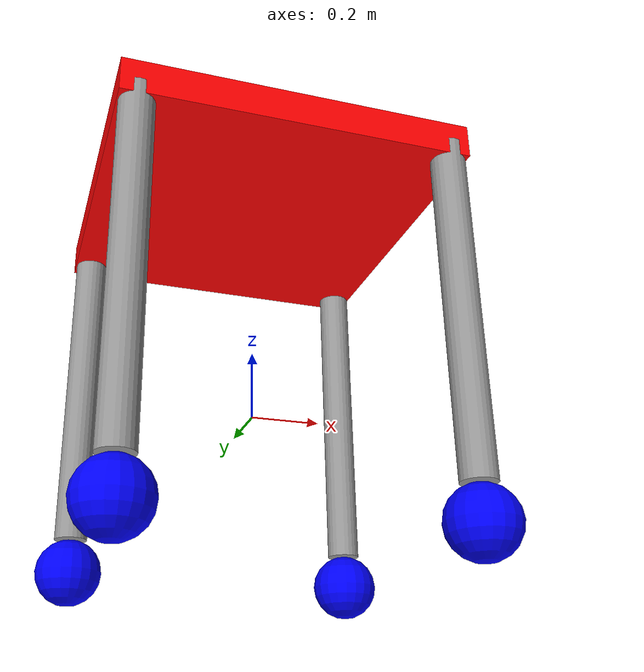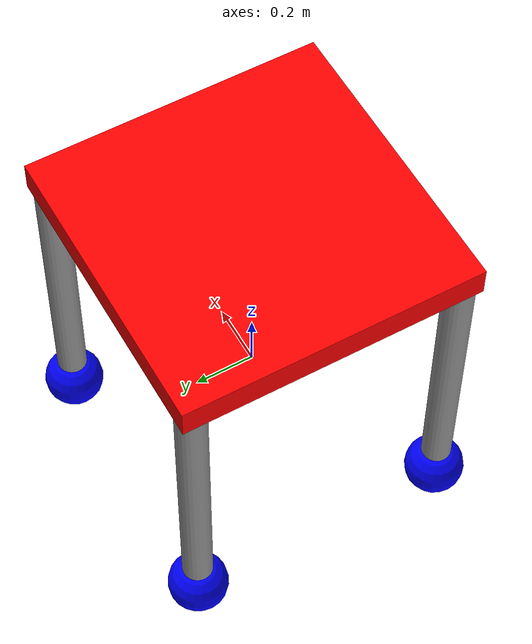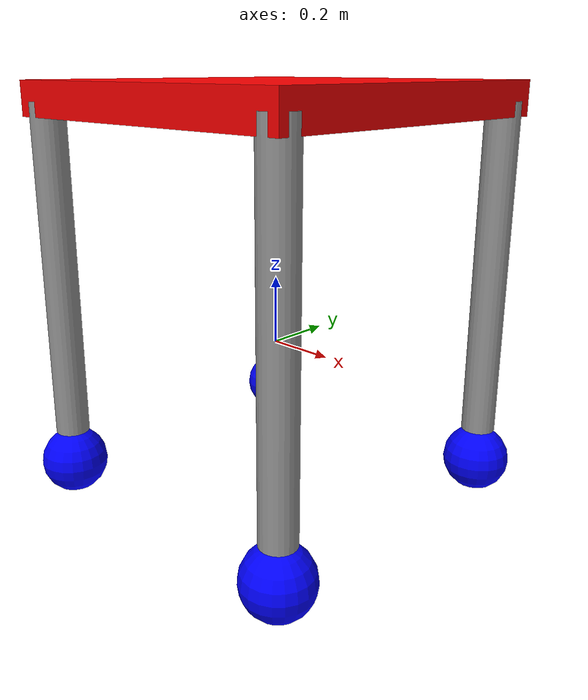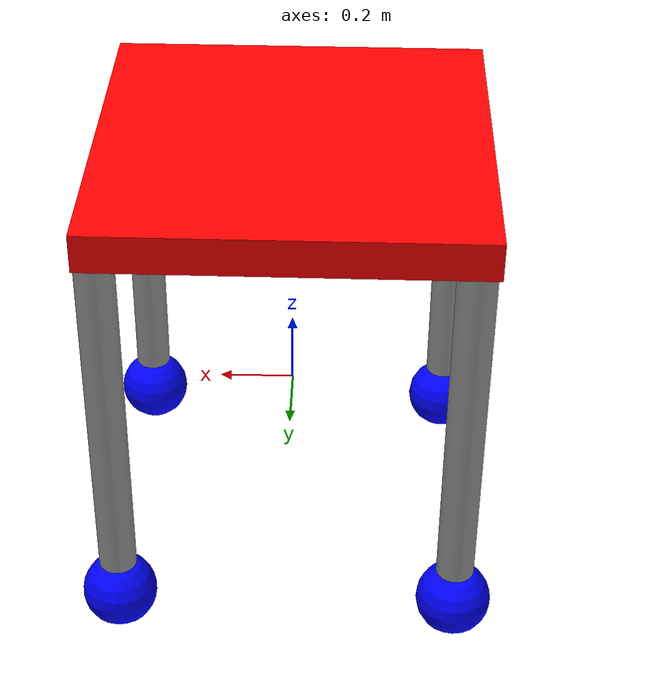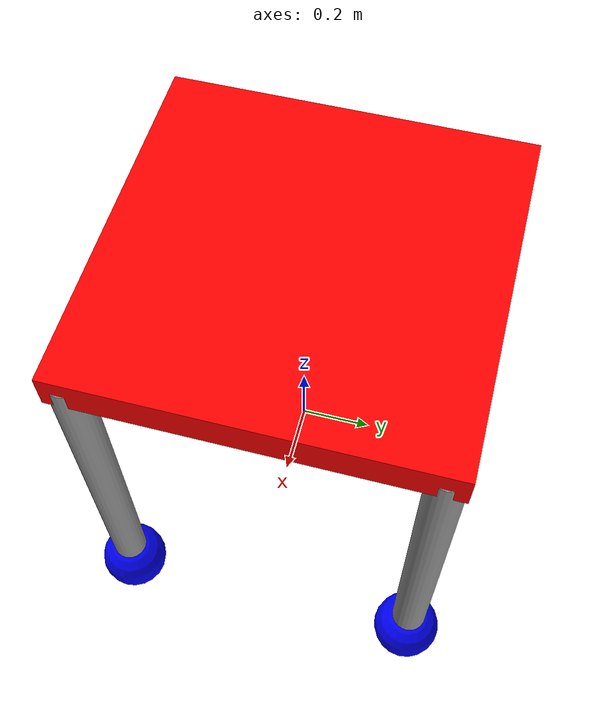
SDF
<?xml version='1.0'?>
<sdf version='1.6'>
  <model name='Robo_Model_3'>
    <link name='link_0'>
      <pose frame=''>-0.003409 0.00263 0.716269 0 -0 0</pose>
      <inertial>
        <mass>1</mass>
        <inertia>
          <ixx>0.166667</ixx>
          <ixy>0</ixy>
          <ixz>0</ixz>
          <iyy>0.166667</iyy>
          <iyz>0</iyz>
          <izz>0.166667</izz>
        </inertia>
        <pose frame=''>0 0 0 0 -0 0</pose>
      </inertial>
      <gravity>1</gravity>
      <self_collide>0</self_collide>
      <kinematic>0</kinematic>
      <visual name='visual'>
        <pose frame=''>0 0 0 0 -0 0</pose>
        <geometry>
          <box>
            <size>1 1 0.1</size>
          </box>
        </geometry>
        <material>
          <lighting>1</lighting>
          <script>
            <uri>file://media/materials/scripts/gazebo.material</uri>
            <name>Gazebo/Grey</name>
          </script>
          <shader type='pixel'>
            <normal_map>__default__</normal_map>
          </shader>
          <ambient>1 0 0 1</ambient>
          <diffuse>0.7 0.7 0.7 1</diffuse>
          <specular>0.01 0.01 0.01 1</specular>
          <emissive>0 0 0 1</emissive>
        </material>
        <transparency>0</transparency>
        <cast_shadows>1</cast_shadows>
      </visual>
      <collision name='collision'>
        <laser_retro>0</laser_retro>
        <max_contacts>10</max_contacts>
        <pose frame=''>0 0 0 0 -0 0</pose>
        <geometry>
          <box>
            <size>1 1 0.1</size>
          </box>
        </geometry>
        <surface>
          <friction>
            <ode>
              <mu>1</mu>
              <mu2>1</mu2>
              <fdir1>0 0 0</fdir1>
              <slip1>0</slip1>
              <slip2>0</slip2>
            </ode>
            <torsional>
              <coefficient>1</coefficient>
              <patch_radius>0</patch_radius>
              <surface_radius>0</surface_radius>
              <use_patch_radius>1</use_patch_radius>
              <ode>
                <slip>0</slip>
              </ode>
            </torsional>
          </friction>
          <bounce>
            <restitution_coefficient>0</restitution_coefficient>
            <threshold>1e+06</threshold>
          </bounce>
          <contact>
            <collide_without_contact>0</collide_without_contact>
            <collide_without_contact_bitmask>1</collide_without_contact_bitmask>
            <collide_bitmask>1</collide_bitmask>
            <ode>
              <soft_cfm>0</soft_cfm>
              <soft_erp>0.2</soft_erp>
              <kp>1e+13</kp>
              <kd>1</kd>
              <max_vel>0.01</max_vel>
              <min_depth>0</min_depth>
            </ode>
            <bullet>
              <split_impulse>1</split_impulse>
              <split_impulse_penetration_threshold>-0.01</split_impulse_penetration_threshold>
              <soft_cfm>0</soft_cfm>
              <soft_erp>0.2</soft_erp>
              <kp>1e+13</kp>
              <kd>1</kd>
            </bullet>
          </contact>
        </surface>
      </collision>
    </link>
    <link name='link_1'>
      <pose frame=''>0.450427 -0.450329 0.216269 0 -0 0</pose>
      <inertial>
        <mass>1</mass>
        <inertia>
          <ixx>0.145833</ixx>
          <ixy>0</ixy>
          <ixz>0</ixz>
          <iyy>0.145833</iyy>
          <iyz>0</iyz>
          <izz>0.125</izz>
        </inertia>
        <pose frame=''>0 0 0 0 -0 0</pose>
      </inertial>
      <gravity>1</gravity>
      <self_collide>0</self_collide>
      <kinematic>0</kinematic>
      <visual name='visual'>
        <pose frame=''>0 0 0 0 -0 0</pose>
        <geometry>
          <cylinder>
            <radius>0.05</radius>
            <length>1</length>
          </cylinder>
        </geometry>
        <material>
          <lighting>1</lighting>
          <script>
            <uri>file://media/materials/scripts/gazebo.material</uri>
            <name>Gazebo/Grey</name>
          </script>
          <shader type='pixel'>
            <normal_map>__default__</normal_map>
          </shader>
          <ambient>0.3 0.3 0.3 1</ambient>
          <diffuse>0.7 0.7 0.7 1</diffuse>
          <specular>0.01 0.01 0.01 1</specular>
          <emissive>0 0 0 1</emissive>
        </material>
        <transparency>0</transparency>
        <cast_shadows>1</cast_shadows>
      </visual>
      <collision name='collision'>
        <laser_retro>0</laser_retro>
        <max_contacts>10</max_contacts>
        <pose frame=''>0 0 0 0 -0 0</pose>
        <geometry>
          <cylinder>
            <radius>0.05</radius>
            <length>1</length>
          </cylinder>
        </geometry>
        <surface>
          <friction>
            <ode>
              <mu>1</mu>
              <mu2>1</mu2>
              <fdir1>0 0 0</fdir1>
              <slip1>0</slip1>
              <slip2>0</slip2>
            </ode>
            <torsional>
              <coefficient>1</coefficient>
              <patch_radius>0</patch_radius>
              <surface_radius>0</surface_radius>
              <use_patch_radius>1</use_patch_radius>
              <ode>
                <slip>0</slip>
              </ode>
            </torsional>
          </friction>
          <bounce>
            <restitution_coefficient>0</restitution_coefficient>
            <threshold>1e+06</threshold>
          </bounce>
          <contact>
            <collide_without_contact>0</collide_without_contact>
            <collide_without_contact_bitmask>1</collide_without_contact_bitmask>
            <collide_bitmask>1</collide_bitmask>
            <ode>
              <soft_cfm>0</soft_cfm>
              <soft_erp>0.2</soft_erp>
              <kp>1e+13</kp>
              <kd>1</kd>
              <max_vel>0.01</max_vel>
              <min_depth>0</min_depth>
            </ode>
            <bullet>
              <split_impulse>1</split_impulse>
              <split_impulse_penetration_threshold>-0.01</split_impulse_penetration_threshold>
              <soft_cfm>0</soft_cfm>
              <soft_erp>0.2</soft_erp>
              <kp>1e+13</kp>
              <kd>1</kd>
            </bullet>
          </contact>
        </surface>
      </collision>
    </link>
    <link name='link_1_clone'>
      <pose frame=''>-0.449573 -0.450329 0.208531 0 -0 0</pose>
      <inertial>
        <mass>1</mass>
        <inertia>
          <ixx>0.145833</ixx>
          <ixy>0</ixy>
          <ixz>0</ixz>
          <iyy>0.145833</iyy>
          <iyz>0</iyz>
          <izz>0.125</izz>
        </inertia>
        <pose frame=''>0 0 0 0 -0 0</pose>
      </inertial>
      <self_collide>0</self_collide>
      <kinematic>0</kinematic>
      <visual name='visual'>
        <pose frame=''>0 0 0 0 -0 0</pose>
        <geometry>
          <cylinder>
            <radius>0.05</radius>
            <length>1</length>
          </cylinder>
        </geometry>
        <material>
          <lighting>1</lighting>
          <script>
            <uri>file://media/materials/scripts/gazebo.material</uri>
            <name>Gazebo/Grey</name>
          </script>
          <shader type='pixel'>
            <normal_map>__default__</normal_map>
          </shader>
          <ambient>0.3 0.3 0.3 1</ambient>
          <diffuse>0.7 0.7 0.7 1</diffuse>
          <specular>0.01 0.01 0.01 1</specular>
          <emissive>0 0 0 1</emissive>
        </material>
        <transparency>0</transparency>
        <cast_shadows>1</cast_shadows>
      </visual>
      <collision name='collision'>
        <laser_retro>0</laser_retro>
        <max_contacts>10</max_contacts>
        <pose frame=''>0 0 0 0 -0 0</pose>
        <geometry>
          <cylinder>
            <radius>0.05</radius>
            <length>1</length>
          </cylinder>
        </geometry>
        <surface>
          <friction>
            <ode>
              <mu>1</mu>
              <mu2>1</mu2>
              <fdir1>0 0 0</fdir1>
              <slip1>0</slip1>
              <slip2>0</slip2>
            </ode>
            <torsional>
              <coefficient>1</coefficient>
              <patch_radius>0</patch_radius>
              <surface_radius>0</surface_radius>
              <use_patch_radius>1</use_patch_radius>
              <ode>
                <slip>0</slip>
              </ode>
            </torsional>
          </friction>
          <bounce>
            <restitution_coefficient>0</restitution_coefficient>
            <threshold>1e+06</threshold>
          </bounce>
          <contact>
            <collide_without_contact>0</collide_without_contact>
            <collide_without_contact_bitmask>1</collide_without_contact_bitmask>
            <collide_bitmask>1</collide_bitmask>
            <ode>
              <soft_cfm>0</soft_cfm>
              <soft_erp>0.2</soft_erp>
              <kp>1e+13</kp>
              <kd>1</kd>
              <max_vel>0.01</max_vel>
              <min_depth>0</min_depth>
            </ode>
            <bullet>
              <split_impulse>1</split_impulse>
              <split_impulse_penetration_threshold>-0.01</split_impulse_penetration_threshold>
              <soft_cfm>0</soft_cfm>
              <soft_erp>0.2</soft_erp>
              <kp>1e+13</kp>
              <kd>1</kd>
            </bullet>
          </contact>
        </surface>
      </collision>
    </link>
    <link name='link_1_clone_clone'>
      <pose frame=''>-0.449573 0.449671 0.208532 0 -0 0</pose>
      <inertial>
        <mass>1</mass>
        <inertia>
          <ixx>0.145833</ixx>
          <ixy>0</ixy>
          <ixz>0</ixz>
          <iyy>0.145833</iyy>
          <iyz>0</iyz>
          <izz>0.125</izz>
        </inertia>
        <pose frame=''>0 0 0 0 -0 0</pose>
      </inertial>
      <self_collide>0</self_collide>
      <kinematic>0</kinematic>
      <visual name='visual'>
        <pose frame=''>0 0 0 0 -0 0</pose>
        <geometry>
          <cylinder>
            <radius>0.05</radius>
            <length>1</length>
          </cylinder>
        </geometry>
        <material>
          <lighting>1</lighting>
          <script>
            <uri>file://media/materials/scripts/gazebo.material</uri>
            <name>Gazebo/Grey</name>
          </script>
          <shader type='pixel'>
            <normal_map>__default__</normal_map>
          </shader>
          <ambient>0.3 0.3 0.3 1</ambient>
          <diffuse>0.7 0.7 0.7 1</diffuse>
          <specular>0.01 0.01 0.01 1</specular>
          <emissive>0 0 0 1</emissive>
        </material>
        <transparency>0</transparency>
        <cast_shadows>1</cast_shadows>
      </visual>
      <collision name='collision'>
        <laser_retro>0</laser_retro>
        <max_contacts>10</max_contacts>
        <pose frame=''>0 0 0 0 -0 0</pose>
        <geometry>
          <cylinder>
            <radius>0.05</radius>
            <length>1</length>
          </cylinder>
        </geometry>
        <surface>
          <friction>
            <ode>
              <mu>1</mu>
              <mu2>1</mu2>
              <fdir1>0 0 0</fdir1>
              <slip1>0</slip1>
              <slip2>0</slip2>
            </ode>
            <torsional>
              <coefficient>1</coefficient>
              <patch_radius>0</patch_radius>
              <surface_radius>0</surface_radius>
              <use_patch_radius>1</use_patch_radius>
              <ode>
                <slip>0</slip>
              </ode>
            </torsional>
          </friction>
          <bounce>
            <restitution_coefficient>0</restitution_coefficient>
            <threshold>1e+06</threshold>
          </bounce>
          <contact>
            <collide_without_contact>0</collide_without_contact>
            <collide_without_contact_bitmask>1</collide_without_contact_bitmask>
            <collide_bitmask>1</collide_bitmask>
            <ode>
              <soft_cfm>0</soft_cfm>
              <soft_erp>0.2</soft_erp>
              <kp>1e+13</kp>
              <kd>1</kd>
              <max_vel>0.01</max_vel>
              <min_depth>0</min_depth>
            </ode>
            <bullet>
              <split_impulse>1</split_impulse>
              <split_impulse_penetration_threshold>-0.01</split_impulse_penetration_threshold>
              <soft_cfm>0</soft_cfm>
              <soft_erp>0.2</soft_erp>
              <kp>1e+13</kp>
              <kd>1</kd>
            </bullet>
          </contact>
        </surface>
      </collision>
    </link>
    <link name='link_1_clone_clone_clone'>
      <pose frame=''>0.450427 0.449671 0.208532 0 -0 0</pose>
      <inertial>
        <mass>1</mass>
        <inertia>
          <ixx>0.145833</ixx>
          <ixy>0</ixy>
          <ixz>0</ixz>
          <iyy>0.145833</iyy>
          <iyz>0</iyz>
          <izz>0.125</izz>
        </inertia>
        <pose frame=''>0 0 0 0 -0 0</pose>
      </inertial>
      <self_collide>0</self_collide>
      <kinematic>0</kinematic>
      <visual name='visual'>
        <pose frame=''>0 0 0 0 -0 0</pose>
        <geometry>
          <cylinder>
            <radius>0.05</radius>
            <length>1</length>
          </cylinder>
        </geometry>
        <material>
          <lighting>1</lighting>
          <script>
            <uri>file://media/materials/scripts/gazebo.material</uri>
            <name>Gazebo/Grey</name>
          </script>
          <shader type='pixel'>
            <normal_map>__default__</normal_map>
          </shader>
          <ambient>0.3 0.3 0.3 1</ambient>
          <diffuse>0.7 0.7 0.7 1</diffuse>
          <specular>0.01 0.01 0.01 1</specular>
          <emissive>0 0 0 1</emissive>
        </material>
        <transparency>0</transparency>
        <cast_shadows>1</cast_shadows>
      </visual>
      <collision name='collision'>
        <laser_retro>0</laser_retro>
        <max_contacts>10</max_contacts>
        <pose frame=''>0 0 0 0 -0 0</pose>
        <geometry>
          <cylinder>
            <radius>0.05</radius>
            <length>1</length>
          </cylinder>
        </geometry>
        <surface>
          <friction>
            <ode>
              <mu>1</mu>
              <mu2>1</mu2>
              <fdir1>0 0 0</fdir1>
              <slip1>0</slip1>
              <slip2>0</slip2>
            </ode>
            <torsional>
              <coefficient>1</coefficient>
              <patch_radius>0</patch_radius>
              <surface_radius>0</surface_radius>
              <use_patch_radius>1</use_patch_radius>
              <ode>
                <slip>0</slip>
              </ode>
            </torsional>
          </friction>
          <bounce>
            <restitution_coefficient>0</restitution_coefficient>
            <threshold>1e+06</threshold>
          </bounce>
          <contact>
            <collide_without_contact>0</collide_without_contact>
            <collide_without_contact_bitmask>1</collide_without_contact_bitmask>
            <collide_bitmask>1</collide_bitmask>
            <ode>
              <soft_cfm>0</soft_cfm>
              <soft_erp>0.2</soft_erp>
              <kp>1e+13</kp>
              <kd>1</kd>
              <max_vel>0.01</max_vel>
              <min_depth>0</min_depth>
            </ode>
            <bullet>
              <split_impulse>1</split_impulse>
              <split_impulse_penetration_threshold>-0.01</split_impulse_penetration_threshold>
              <soft_cfm>0</soft_cfm>
              <soft_erp>0.2</soft_erp>
              <kp>1e+13</kp>
              <kd>1</kd>
            </bullet>
          </contact>
        </surface>
      </collision>
    </link>
    <link name='link_2'>
      <pose frame=''>0.450427 -0.450329 -0.383731 0 -0 0</pose>
      <inertial>
        <mass>1</mass>
        <inertia>
          <ixx>0.1</ixx>
          <ixy>0</ixy>
          <ixz>0</ixz>
          <iyy>0.1</iyy>
          <iyz>0</iyz>
          <izz>0.1</izz>
        </inertia>
        <pose frame=''>0 0 0 0 -0 0</pose>
      </inertial>
      <gravity>1</gravity>
      <self_collide>0</self_collide>
      <kinematic>0</kinematic>
      <visual name='visual'>
        <pose frame=''>0 0 0 0 -0 0</pose>
        <geometry>
          <sphere>
            <radius>0.1</radius>
          </sphere>
        </geometry>
        <material>
          <lighting>1</lighting>
          <script>
            <uri>file://media/materials/scripts/gazebo.material</uri>
            <name>Gazebo/Grey</name>
          </script>
          <shader type='pixel'>
            <normal_map>__default__</normal_map>
          </shader>
          <ambient>0 0 1 1</ambient>
          <diffuse>0.7 0.7 0.7 1</diffuse>
          <specular>0.01 0.01 0.01 1</specular>
          <emissive>0 0 0 1</emissive>
        </material>
        <transparency>0</transparency>
        <cast_shadows>1</cast_shadows>
      </visual>
      <collision name='collision'>
        <laser_retro>0</laser_retro>
        <max_contacts>10</max_contacts>
        <pose frame=''>0 0 0 0 -0 0</pose>
        <geometry>
          <sphere>
            <radius>0.1</radius>
          </sphere>
        </geometry>
        <surface>
          <friction>
            <ode>
              <mu>1</mu>
              <mu2>1</mu2>
              <fdir1>0 0 0</fdir1>
              <slip1>0</slip1>
              <slip2>0</slip2>
            </ode>
            <torsional>
              <coefficient>1</coefficient>
              <patch_radius>0</patch_radius>
              <surface_radius>0</surface_radius>
              <use_patch_radius>1</use_patch_radius>
              <ode>
                <slip>0</slip>
              </ode>
            </torsional>
          </friction>
          <bounce>
            <restitution_coefficient>0</restitution_coefficient>
            <threshold>1e+06</threshold>
          </bounce>
          <contact>
            <collide_without_contact>0</collide_without_contact>
            <collide_without_contact_bitmask>1</collide_without_contact_bitmask>
            <collide_bitmask>1</collide_bitmask>
            <ode>
              <soft_cfm>0</soft_cfm>
              <soft_erp>0.2</soft_erp>
              <kp>1e+13</kp>
              <kd>1</kd>
              <max_vel>0.01</max_vel>
              <min_depth>0</min_depth>
            </ode>
            <bullet>
              <split_impulse>1</split_impulse>
              <split_impulse_penetration_threshold>-0.01</split_impulse_penetration_threshold>
              <soft_cfm>0</soft_cfm>
              <soft_erp>0.2</soft_erp>
              <kp>1e+13</kp>
              <kd>1</kd>
            </bullet>
          </contact>
        </surface>
      </collision>
    </link>
    <link name='link_2_clone'>
      <pose frame=''>0.450427 0.449671 -0.391468 0 -0 0</pose>
      <inertial>
        <mass>1</mass>
        <inertia>
          <ixx>0.1</ixx>
          <ixy>0</ixy>
          <ixz>0</ixz>
          <iyy>0.1</iyy>
          <iyz>0</iyz>
          <izz>0.1</izz>
        </inertia>
        <pose frame=''>0 0 0 0 -0 0</pose>
      </inertial>
      <self_collide>0</self_collide>
      <kinematic>0</kinematic>
      <visual name='visual'>
        <pose frame=''>0 0 0 0 -0 0</pose>
        <geometry>
          <sphere>
            <radius>0.1</radius>
          </sphere>
        </geometry>
        <material>
          <lighting>1</lighting>
          <script>
            <uri>file://media/materials/scripts/gazebo.material</uri>
            <name>Gazebo/Grey</name>
          </script>
          <shader type='pixel'>
            <normal_map>__default__</normal_map>
          </shader>
          <ambient>0 0 1 1</ambient>
          <diffuse>0.7 0.7 0.7 1</diffuse>
          <specular>0.01 0.01 0.01 1</specular>
          <emissive>0 0 0 1</emissive>
        </material>
        <transparency>0</transparency>
        <cast_shadows>1</cast_shadows>
      </visual>
      <collision name='collision'>
        <laser_retro>0</laser_retro>
        <max_contacts>10</max_contacts>
        <pose frame=''>0 0 0 0 -0 0</pose>
        <geometry>
          <sphere>
            <radius>0.1</radius>
          </sphere>
        </geometry>
        <surface>
          <friction>
            <ode>
              <mu>1</mu>
              <mu2>1</mu2>
              <fdir1>0 0 0</fdir1>
              <slip1>0</slip1>
              <slip2>0</slip2>
            </ode>
            <torsional>
              <coefficient>1</coefficient>
              <patch_radius>0</patch_radius>
              <surface_radius>0</surface_radius>
              <use_patch_radius>1</use_patch_radius>
              <ode>
                <slip>0</slip>
              </ode>
            </torsional>
          </friction>
          <bounce>
            <restitution_coefficient>0</restitution_coefficient>
            <threshold>1e+06</threshold>
          </bounce>
          <contact>
            <collide_without_contact>0</collide_without_contact>
            <collide_without_contact_bitmask>1</collide_without_contact_bitmask>
            <collide_bitmask>1</collide_bitmask>
            <ode>
              <soft_cfm>0</soft_cfm>
              <soft_erp>0.2</soft_erp>
              <kp>1e+13</kp>
              <kd>1</kd>
              <max_vel>0.01</max_vel>
              <min_depth>0</min_depth>
            </ode>
            <bullet>
              <split_impulse>1</split_impulse>
              <split_impulse_penetration_threshold>-0.01</split_impulse_penetration_threshold>
              <soft_cfm>0</soft_cfm>
              <soft_erp>0.2</soft_erp>
              <kp>1e+13</kp>
              <kd>1</kd>
            </bullet>
          </contact>
        </surface>
      </collision>
    </link>
    <link name='link_2_clone_clone'>
      <pose frame=''>-0.449573 0.449671 -0.391468 0 -0 0</pose>
      <inertial>
        <mass>1</mass>
        <inertia>
          <ixx>0.1</ixx>
          <ixy>0</ixy>
          <ixz>0</ixz>
          <iyy>0.1</iyy>
          <iyz>0</iyz>
          <izz>0.1</izz>
        </inertia>
        <pose frame=''>0 0 0 0 -0 0</pose>
      </inertial>
      <self_collide>0</self_collide>
      <kinematic>0</kinematic>
      <visual name='visual'>
        <pose frame=''>0 0 0 0 -0 0</pose>
        <geometry>
          <sphere>
            <radius>0.1</radius>
          </sphere>
        </geometry>
        <material>
          <lighting>1</lighting>
          <script>
            <uri>file://media/materials/scripts/gazebo.material</uri>
            <name>Gazebo/Grey</name>
          </script>
          <shader type='pixel'>
            <normal_map>__default__</normal_map>
          </shader>
          <ambient>0 0 1 1</ambient>
          <diffuse>0.7 0.7 0.7 1</diffuse>
          <specular>0.01 0.01 0.01 1</specular>
          <emissive>0 0 0 1</emissive>
        </material>
        <transparency>0</transparency>
        <cast_shadows>1</cast_shadows>
      </visual>
      <collision name='collision'>
        <laser_retro>0</laser_retro>
        <max_contacts>10</max_contacts>
        <pose frame=''>0 0 0 0 -0 0</pose>
        <geometry>
          <sphere>
            <radius>0.1</radius>
          </sphere>
        </geometry>
        <surface>
          <friction>
            <ode>
              <mu>1</mu>
              <mu2>1</mu2>
              <fdir1>0 0 0</fdir1>
              <slip1>0</slip1>
              <slip2>0</slip2>
            </ode>
            <torsional>
              <coefficient>1</coefficient>
              <patch_radius>0</patch_radius>
              <surface_radius>0</surface_radius>
              <use_patch_radius>1</use_patch_radius>
              <ode>
                <slip>0</slip>
              </ode>
            </torsional>
          </friction>
          <bounce>
            <restitution_coefficient>0</restitution_coefficient>
            <threshold>1e+06</threshold>
          </bounce>
          <contact>
            <collide_without_contact>0</collide_without_contact>
            <collide_without_contact_bitmask>1</collide_without_contact_bitmask>
            <collide_bitmask>1</collide_bitmask>
            <ode>
              <soft_cfm>0</soft_cfm>
              <soft_erp>0.2</soft_erp>
              <kp>1e+13</kp>
              <kd>1</kd>
              <max_vel>0.01</max_vel>
              <min_depth>0</min_depth>
            </ode>
            <bullet>
              <split_impulse>1</split_impulse>
              <split_impulse_penetration_threshold>-0.01</split_impulse_penetration_threshold>
              <soft_cfm>0</soft_cfm>
              <soft_erp>0.2</soft_erp>
              <kp>1e+13</kp>
              <kd>1</kd>
            </bullet>
          </contact>
        </surface>
      </collision>
    </link>
    <link name='link_2_clone_clone_clone'>
      <pose frame=''>-0.449573 -0.450329 -0.391469 0 -0 0</pose>
      <inertial>
        <mass>1</mass>
        <inertia>
          <ixx>0.1</ixx>
          <ixy>0</ixy>
          <ixz>0</ixz>
          <iyy>0.1</iyy>
          <iyz>0</iyz>
          <izz>0.1</izz>
        </inertia>
        <pose frame=''>0 0 0 0 -0 0</pose>
      </inertial>
      <self_collide>0</self_collide>
      <kinematic>0</kinematic>
      <visual name='visual'>
        <pose frame=''>0 0 0 0 -0 0</pose>
        <geometry>
          <sphere>
            <radius>0.1</radius>
          </sphere>
        </geometry>
        <material>
          <lighting>1</lighting>
          <script>
            <uri>file://media/materials/scripts/gazebo.material</uri>
            <name>Gazebo/Grey</name>
          </script>
          <shader type='pixel'>
            <normal_map>__default__</normal_map>
          </shader>
          <ambient>0 0 1 1</ambient>
          <diffuse>0.7 0.7 0.7 1</diffuse>
          <specular>0.01 0.01 0.01 1</specular>
          <emissive>0 0 0 1</emissive>
        </material>
        <transparency>0</transparency>
        <cast_shadows>1</cast_shadows>
      </visual>
      <collision name='collision'>
        <laser_retro>0</laser_retro>
        <max_contacts>10</max_contacts>
        <pose frame=''>0 0 0 0 -0 0</pose>
        <geometry>
          <sphere>
            <radius>0.1</radius>
          </sphere>
        </geometry>
        <surface>
          <friction>
            <ode>
              <mu>1</mu>
              <mu2>1</mu2>
              <fdir1>0 0 0</fdir1>
              <slip1>0</slip1>
              <slip2>0</slip2>
            </ode>
            <torsional>
              <coefficient>1</coefficient>
              <patch_radius>0</patch_radius>
              <surface_radius>0</surface_radius>
              <use_patch_radius>1</use_patch_radius>
              <ode>
                <slip>0</slip>
              </ode>
            </torsional>
          </friction>
          <bounce>
            <restitution_coefficient>0</restitution_coefficient>
            <threshold>1e+06</threshold>
          </bounce>
          <contact>
            <collide_without_contact>0</collide_without_contact>
            <collide_without_contact_bitmask>1</collide_without_contact_bitmask>
            <collide_bitmask>1</collide_bitmask>
            <ode>
              <soft_cfm>0</soft_cfm>
              <soft_erp>0.2</soft_erp>
              <kp>1e+13</kp>
              <kd>1</kd>
              <max_vel>0.01</max_vel>
              <min_depth>0</min_depth>
            </ode>
            <bullet>
              <split_impulse>1</split_impulse>
              <split_impulse_penetration_threshold>-0.01</split_impulse_penetration_threshold>
              <soft_cfm>0</soft_cfm>
              <soft_erp>0.2</soft_erp>
              <kp>1e+13</kp>
              <kd>1</kd>
            </bullet>
          </contact>
        </surface>
      </collision>
    </link>
    <joint name='link_0_JOINT_3' type='fixed'>
      <parent>link_0</parent>
      <child>link_1</child>
      <pose frame=''>0 0 0 0 -0 0</pose>
      <physics>
        <ode>
          <limit>
            <cfm>0</cfm>
            <erp>0.2</erp>
          </limit>
          <suspension>
            <cfm>0</cfm>
            <erp>0.2</erp>
          </suspension>
        </ode>
      </physics>
    </joint>
    <joint name='link_0_JOINT_4' type='fixed'>
      <parent>link_0</parent>
      <child>link_1_clone_clone</child>
      <pose frame=''>0 0 0 0 -0 0</pose>
      <physics>
        <ode>
          <limit>
            <cfm>0</cfm>
            <erp>0.2</erp>
          </limit>
          <suspension>
            <cfm>0</cfm>
            <erp>0.2</erp>
          </suspension>
        </ode>
      </physics>
    </joint>
    <joint name='link_0_JOINT_5' type='fixed'>
      <parent>link_0</parent>
      <child>link_1_clone_clone_clone</child>
      <pose frame=''>0 0 0 0 -0 0</pose>
      <physics>
        <ode>
          <limit>
            <cfm>0</cfm>
            <erp>0.2</erp>
          </limit>
          <suspension>
            <cfm>0</cfm>
            <erp>0.2</erp>
          </suspension>
        </ode>
      </physics>
    </joint>
    <joint name='link_0_JOINT_6' type='fixed'>
      <parent>link_0</parent>
      <child>link_1_clone_clone</child>
      <pose frame=''>0 0 0 0 -0 0</pose>
      <physics>
        <ode>
          <limit>
            <cfm>0</cfm>
            <erp>0.2</erp>
          </limit>
          <suspension>
            <cfm>0</cfm>
            <erp>0.2</erp>
          </suspension>
        </ode>
      </physics>
    </joint>
    <joint name='link_0_JOINT_7' type='fixed'>
      <parent>link_0</parent>
      <child>link_1_clone</child>
      <pose frame=''>0 0 0 0 -0 0</pose>
      <physics>
        <ode>
          <limit>
            <cfm>0</cfm>
            <erp>0.2</erp>
          </limit>
          <suspension>
            <cfm>0</cfm>
            <erp>0.2</erp>
          </suspension>
        </ode>
      </physics>
    </joint>
    <joint name='link_1_JOINT_9' type='revolute2'>
      <parent>link_1</parent>
      <child>link_2</child>
      <pose frame=''>0 0 0 0 -0 0</pose>
      <axis>
        <xyz>1 0 0</xyz>
        <use_parent_model_frame>0</use_parent_model_frame>
        <limit>
          <lower>-1.79769e+308</lower>
          <upper>1.79769e+308</upper>
          <effort>-1</effort>
          <velocity>-1</velocity>
        </limit>
        <dynamics>
          <spring_reference>0</spring_reference>
          <spring_stiffness>0</spring_stiffness>
          <damping>0</damping>
        </dynamics>
      </axis>
      <axis2>
        <xyz>0 1 0</xyz>
        <use_parent_model_frame>0</use_parent_model_frame>
        <dynamics>
          <spring_reference>0</spring_reference>
          <spring_stiffness>0</spring_stiffness>
          <damping>0</damping>
        </dynamics>
        <limit>
          <lower>-1.79769e+308</lower>
          <upper>1.79769e+308</upper>
          <effort>-1</effort>
          <velocity>-1</velocity>
        </limit>
      </axis2>
      <physics>
        <ode>
          <limit>
            <cfm>0</cfm>
            <erp>0.2</erp>
          </limit>
          <suspension>
            <cfm>0</cfm>
            <erp>0.2</erp>
          </suspension>
        </ode>
      </physics>
    </joint>
    <joint name='link_1_clone_JOINT_8' type='revolute2'>
      <parent>link_1_clone</parent>
      <child>link_2_clone_clone_clone</child>
      <pose frame=''>0 0 0 0 -0 0</pose>
      <axis>
        <xyz>1 0 0</xyz>
        <use_parent_model_frame>0</use_parent_model_frame>
        <limit>
          <lower>-1.79769e+308</lower>
          <upper>1.79769e+308</upper>
          <effort>-1</effort>
          <velocity>-1</velocity>
        </limit>
        <dynamics>
          <spring_reference>0</spring_reference>
          <spring_stiffness>0</spring_stiffness>
          <damping>0</damping>
        </dynamics>
      </axis>
      <axis2>
        <xyz>0 1 0</xyz>
        <use_parent_model_frame>0</use_parent_model_frame>
        <dynamics>
          <spring_reference>0</spring_reference>
          <spring_stiffness>0</spring_stiffness>
          <damping>0</damping>
        </dynamics>
        <limit>
          <lower>-1.79769e+308</lower>
          <upper>1.79769e+308</upper>
          <effort>-1</effort>
          <velocity>-1</velocity>
        </limit>
      </axis2>
      <physics>
        <ode>
          <limit>
            <cfm>0</cfm>
            <erp>0.2</erp>
          </limit>
          <suspension>
            <cfm>0</cfm>
            <erp>0.2</erp>
          </suspension>
        </ode>
      </physics>
    </joint>
    <joint name='link_1_clone_clone_JOINT_11' type='revolute2'>
      <parent>link_1_clone_clone</parent>
      <child>link_2_clone_clone</child>
      <pose frame=''>0 0 0 0 -0 0</pose>
      <axis>
        <xyz>1 0 0</xyz>
        <use_parent_model_frame>0</use_parent_model_frame>
        <limit>
          <lower>-1.79769e+308</lower>
          <upper>1.79769e+308</upper>
          <effort>-1</effort>
          <velocity>-1</velocity>
        </limit>
        <dynamics>
          <spring_reference>0</spring_reference>
          <spring_stiffness>0</spring_stiffness>
          <damping>0</damping>
        </dynamics>
      </axis>
      <axis2>
        <xyz>0 1 0</xyz>
        <use_parent_model_frame>0</use_parent_model_frame>
        <dynamics>
          <spring_reference>0</spring_reference>
          <spring_stiffness>0</spring_stiffness>
          <damping>0</damping>
        </dynamics>
        <limit>
          <lower>-1.79769e+308</lower>
          <upper>1.79769e+308</upper>
          <effort>-1</effort>
          <velocity>-1</velocity>
        </limit>
      </axis2>
      <physics>
        <ode>
          <limit>
            <cfm>0</cfm>
            <erp>0.2</erp>
          </limit>
          <suspension>
            <cfm>0</cfm>
            <erp>0.2</erp>
          </suspension>
        </ode>
      </physics>
    </joint>
    <joint name='link_1_clone_clone_clone_JOINT_10' type='revolute2'>
      <parent>link_1_clone_clone_clone</parent>
      <child>link_2_clone</child>
      <pose frame=''>0 0 0 0 -0 0</pose>
      <axis>
        <xyz>1 0 0</xyz>
        <use_parent_model_frame>0</use_parent_model_frame>
        <limit>
          <lower>-1.79769e+308</lower>
          <upper>1.79769e+308</upper>
          <effort>-1</effort>
          <velocity>-1</velocity>
        </limit>
        <dynamics>
          <spring_reference>0</spring_reference>
          <spring_stiffness>0</spring_stiffness>
          <damping>0</damping>
        </dynamics>
      </axis>
      <axis2>
        <xyz>0 1 0</xyz>
        <use_parent_model_frame>0</use_parent_model_frame>
        <dynamics>
          <spring_reference>0</spring_reference>
          <spring_stiffness>0</spring_stiffness>
          <damping>0</damping>
        </dynamics>
        <limit>
          <lower>-1.79769e+308</lower>
          <upper>1.79769e+308</upper>
          <effort>-1</effort>
          <velocity>-1</velocity>
        </limit>
      </axis2>
      <physics>
        <ode>
          <limit>
            <cfm>0</cfm>
            <erp>0.2</erp>
          </limit>
          <suspension>
            <cfm>0</cfm>
            <erp>0.2</erp>
          </suspension>
        </ode>
      </physics>
    </joint>
    <static>0</static>
    <allow_auto_disable>1</allow_auto_disable>
  </model>
</sdf>
